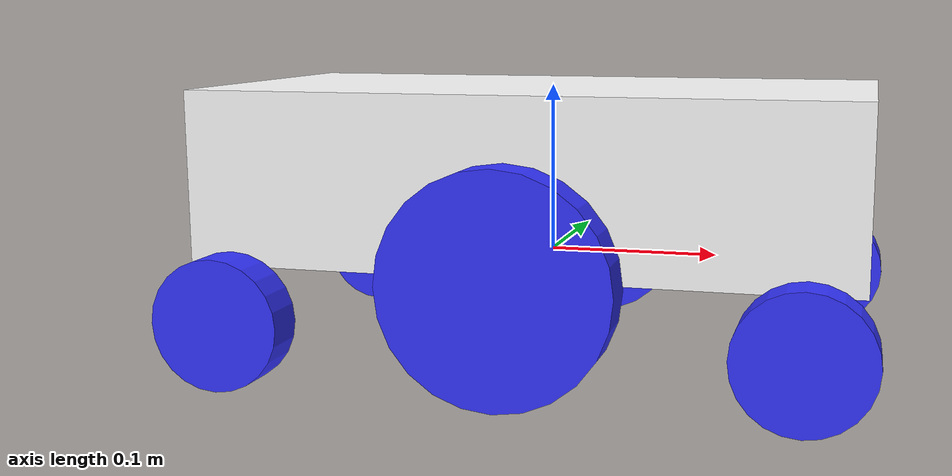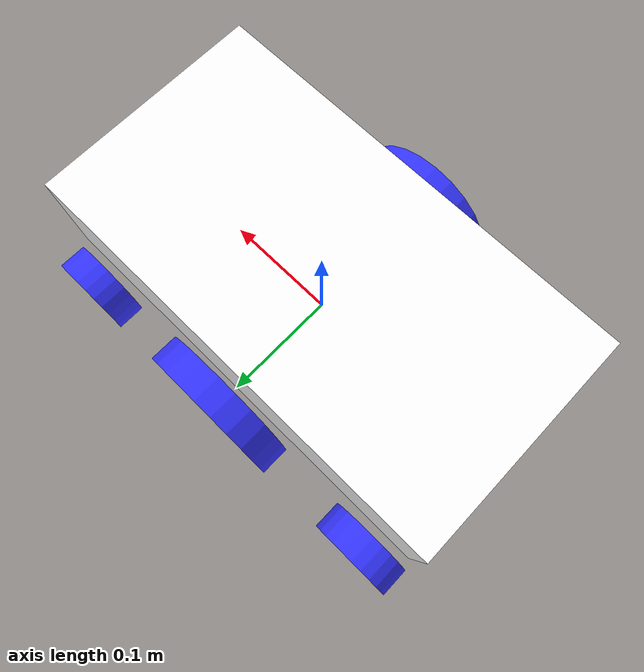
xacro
<?xml version="1.0"?>
<robot xmlns:xacro="http://www.ros.org/wiki/xacro">

    <xacro:include filename="inertia_macros.xacro"/>

    <material name="white">
        <color rgba="1 1 1 1"/>
    </material>

    <material name="orange">
        <color rgba="1 0.3 0.1 1"/>
    </material>

    <material name="blue">
        <color rgba="0.2 0.2 1 1"/>
    </material>

    <material name="black">
        <color rgba="0 0 0 1"/>
    </material>

    <material name="red">
        <color rgba="1 0 0 1"/>
    </material>

    <link name="base_link"></link>

    <joint name="chassis_joint" type='fixed'>
        <parent link="base_link"/>
        <child link="chassis"/>
        <origin xyz="-0.19 0 0"/>
    </joint>

    <link name="chassis">
        <visual>
            <origin xyz="0.19 0 0.05"/>
            <geometry>
                <box size="0.38 0.2 0.1"/>
            </geometry>
            <material name="white"/>
        </visual>
        <collision>
            <origin xyz="0.19 0 0.05"/>
            <geometry>
                <box size="0.38 0.2 0.1"/>
            </geometry>
        </collision>
        <xacro:inertial_box mass="0.6" x="0.38" y="0.2" z="0.1">
            <origin xyz="0.19 0 0.05" rpy="0 0 0"/>
        </xacro:inertial_box>
    </link>

    <gazebo reference="chassis">
        <material>Gazebo/White</material>
    </gazebo>

    <joint name="left_wheel_joint" type="continuous">
        <parent link="base_link"/>
        <child link="left_wheel"/>
        <origin xyz="0 0.12 0" rpy="-${pi/2} 0 0"/>
        <axis xyz="0 0 1"/>
    </joint>

    <link name="left_wheel">
        <visual>
            <geometry>
                <cylinder radius="0.065" length="0.025"/>
            </geometry>
            <material name="blue"/>
        </visual>
        <collision>
            <geometry>
                <cylinder radius="0.065" length="0.025"/>
            </geometry>
        </collision>
        <xacro:inertial_cylinder mass="0.2" length="0.025" radius="0.065">
            <origin xyz="0 0 0" rpy="0 0 0"/>
        </xacro:inertial_cylinder>
    </link>

    <gazebo reference="left_wheel">
        <material>Gazebo/Blue</material>
    </gazebo>

    <joint name="right_wheel_joint" type="continuous">
        <parent link="base_link"/>
        <child link="right_wheel"/>
        <origin xyz="0 -0.12 0" rpy="${pi/2} 0 0"/>
        <axis xyz="0 0 -1"/>
    </joint>

    <link name="right_wheel">
        <visual>
            <geometry>
                <cylinder radius="0.065" length="0.025"/>
            </geometry>
            <material name="blue"/>
        </visual>
        <collision>
            <geometry>
                <cylinder radius="0.065" length="0.025"/>
            </geometry>
        </collision>
        <xacro:inertial_cylinder mass="0.2" length="0.025" radius="0.065">
            <origin xyz="0 0 0" rpy="0 0 0"/>
        </xacro:inertial_cylinder>
    </link>

    <gazebo reference="right_wheel">
        <material>Gazebo/Blue</material>
    </gazebo>

    <joint name="left_front_wheel_joint" type="continuous">
        <parent link="base_link"/>
        <child link="left_front_wheel"/>
        <origin xyz="0.16 0.12 -0.0275" rpy="-${pi/2} 0 0"/>
        <axis xyz="0 0 1"/>
    </joint>

    <link name="left_front_wheel">
        <visual>
            <geometry>
                <cylinder radius="0.0375" length="0.025"/>
            </geometry>
            <material name="blue"/>
        </visual>
        <collision>
            <geometry>
                <cylinder radius="0.0375" length="0.025"/>
            </geometry>
        </collision>
        <xacro:inertial_cylinder mass="0.3" length="0.025" radius="0.0375">
            <origin xyz="0 0 0" rpy="0 0 0"/>
        </xacro:inertial_cylinder>
    </link>

    <gazebo reference="left_front_wheel">
        <material>Gazebo/Black</material>
        <mu1 value="0.001"/>
        <mu2 value="0.001"/>
    </gazebo>

    <joint name="right_front_wheel_joint" type="continuous">
        <parent link="base_link"/>
        <child link="right_front_wheel"/>
        <origin xyz="0.16 -0.12 -0.0275" rpy="${pi/2} 0 0"/>
        <axis xyz="0 0 -1"/>
    </joint>

    <link name="right_front_wheel">
        <visual>
            <geometry>
                <cylinder radius="0.0375" length="0.025"/>
            </geometry>
            <material name="blue"/>
        </visual>
        <collision>
            <geometry>
                <cylinder radius="0.0375" length="0.025"/>
            </geometry>
        </collision>
        <xacro:inertial_cylinder mass="0.3" length="0.025" radius="0.0375">
            <origin xyz="0 0 0" rpy="0 0 0"/>
        </xacro:inertial_cylinder>
    </link>

    <gazebo reference="right_front_wheel">
        <material>Gazebo/Black</material>
        <mu1 value="0.001"/>
        <mu2 value="0.001"/>
    </gazebo>

    <joint name="left_back_wheel_joint" type="continuous">
        <parent link="base_link"/>
        <child link="left_back_wheel"/>
        <origin xyz="-0.16 0.12 -0.0275" rpy="-${pi/2} 0 0"/>
        <axis xyz="0 0 1"/>
    </joint>

    <link name="left_back_wheel">
        <visual>
            <geometry>
                <cylinder radius="0.0375" length="0.025"/>
            </geometry>
            <material name="blue"/>
        </visual>
        <collision>
            <geometry>
                <cylinder radius="0.0375" length="0.025"/>
            </geometry>
        </collision>
        <xacro:inertial_cylinder mass="0.3" length="0.025" radius="0.0375">
            <origin xyz="0 0 0" rpy="0 0 0"/>
        </xacro:inertial_cylinder>
    </link>

    <gazebo reference="left_back_wheel">
        <material>Gazebo/Black</material>
        <mu1 value="0.001"/>
        <mu2 value="0.001"/>
    </gazebo>

    <joint name="right_back_wheel_joint" type="continuous">
        <parent link="base_link"/>
        <child link="right_back_wheel"/>
        <origin xyz="-0.16 -0.12 -0.0275" rpy="${pi/2} 0 0"/>
        <axis xyz="0 0 -1"/>
    </joint>

    <link name="right_back_wheel">
        <visual>
            <geometry>
                <cylinder radius="0.0375" length="0.025"/>
            </geometry>
            <material name="blue"/>
        </visual>
        <collision>
            <geometry>
                <cylinder radius="0.0375" length="0.025"/>
            </geometry>
        </collision>
        <xacro:inertial_cylinder mass="0.3" length="0.025" radius="0.0375">
            <origin xyz="0 0 0" rpy="0 0 0"/>
        </xacro:inertial_cylinder>
    </link>

    <gazebo reference="right_back_wheel">
        <material>Gazebo/Black</material>
        <mu1 value="0.001"/>
        <mu2 value="0.001"/>
    </gazebo>

</robot>
